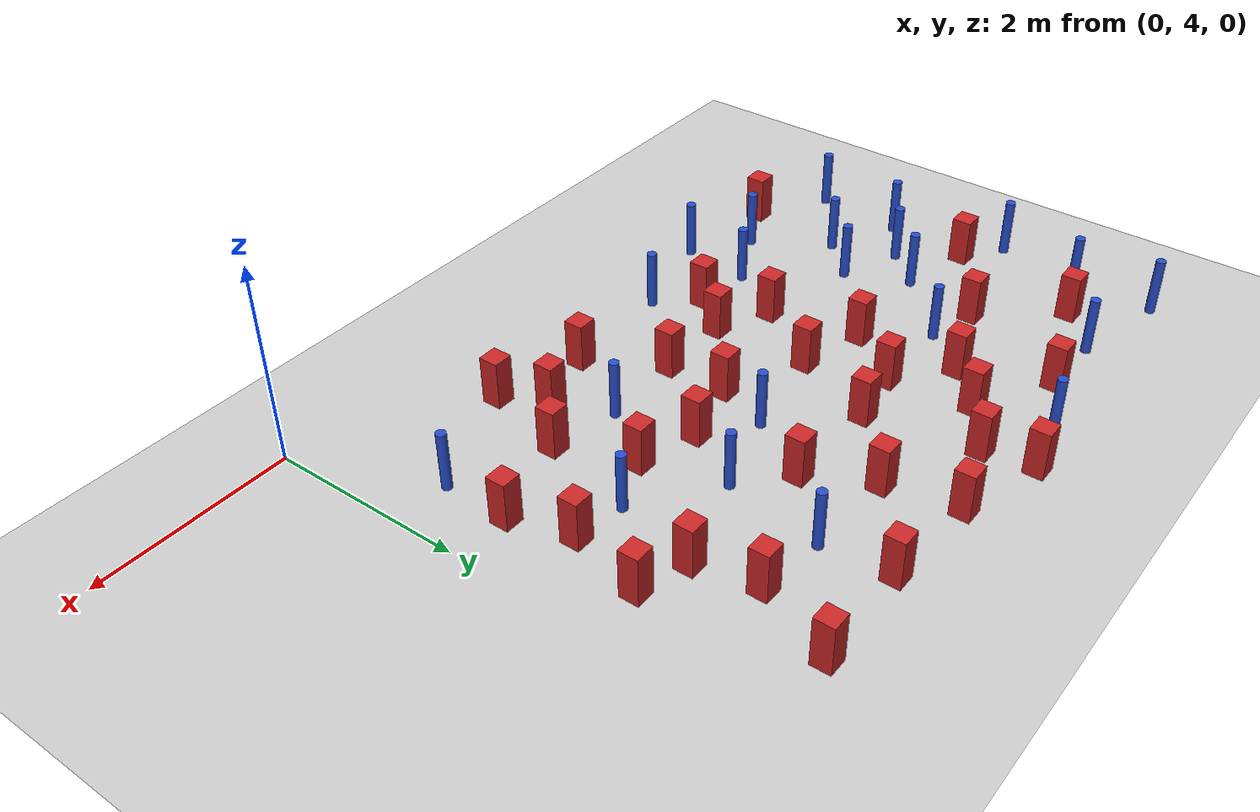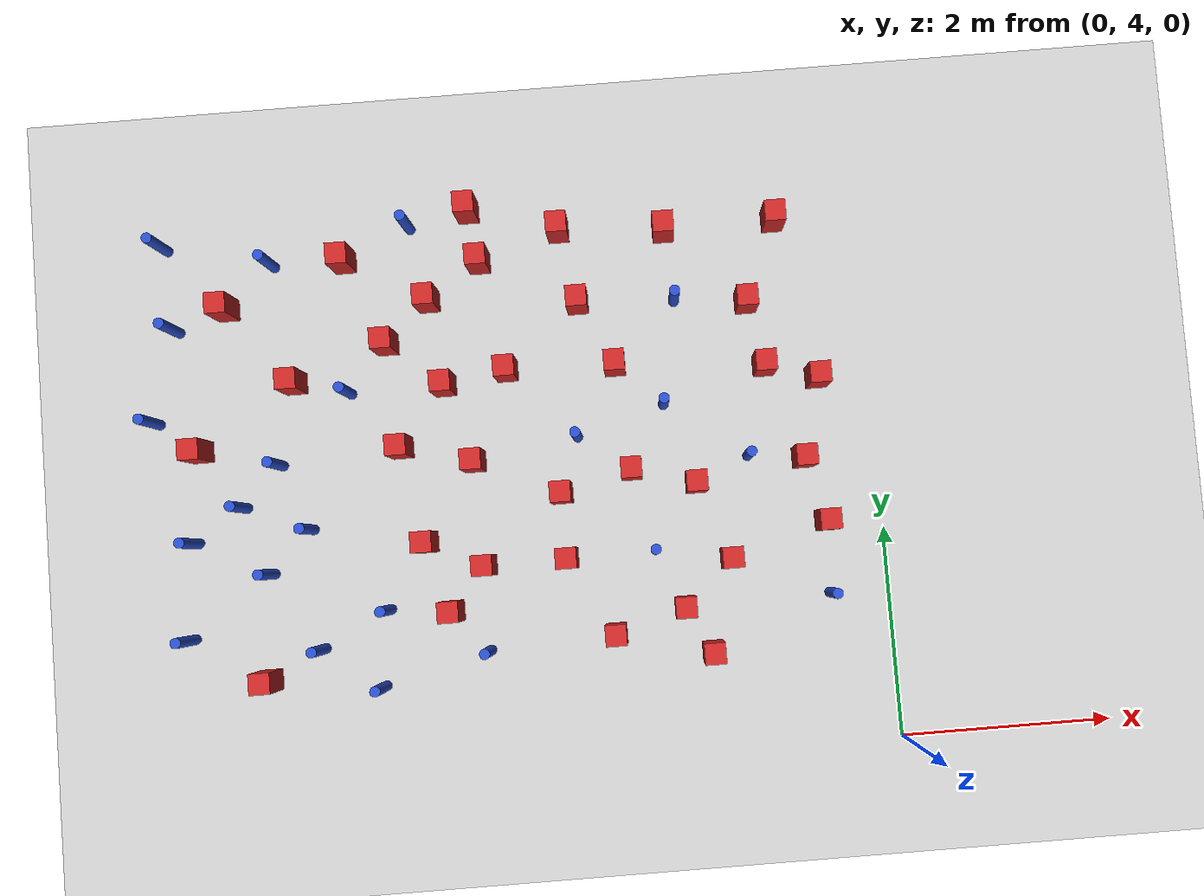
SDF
<sdf version="1.6">
 <world name="default">
  <model name="ground_plane">
   <static>1</static>
   <link name="link">
    <collision name="collision">
     <geometry><plane><normal>0 0 1</normal><size>100 100</size></plane></geometry>
     <surface><friction><ode><mu>100</mu><mu2>50</mu2></ode></friction></surface>
    </collision>
    <visual name="visual">
     <cast_shadows>0</cast_shadows>
     <geometry><plane><normal>0 0 1</normal><size>100 100</size></plane></geometry>
     <material>
      <ambient>1.0 1.0 1.0 1.0</ambient>
      <diffuse>0.8 0.8 0.8 1.0</diffuse>
      <specular>0.01 0.01 0.01 1.000000</specular>
     </material>
    </visual>
   </link>
  </model>
  <model name="square_post_obstacle1">
   <static>true</static>
   <pose>-6.19454957037 8.60646910702 8.22691968438e-08 7.22125133819e-06 -7.54495500217e-07 2.29674213826e-05</pose>
   <link name="link">
    <pose>0 0 0.25 0 -0 0</pose>
    <inertial>
     <mass>100</mass>
     <inertia>
      <ixx>0.166667</ixx>
      <ixy>0</ixy>
      <ixz>0</ixz>
      <iyy>0.166667</iyy>
      <iyz>0</iyz>
      <izz>0.166667</izz>
     </inertia>
    </inertial>
    <collision name="collision"><geometry><box><size>.2 .2 .5</size></box></geometry></collision>
    <visual name="visual">
     <geometry><box><size>.2 .2 .5</size></box></geometry>
     <material>
      <script><name>Gazebo/Red</name><uri>file://media/materials/scripts/gazebo.material</uri></script>
     </material>
    </visual>
   </link>
  </model>
  <model name="square_post_obstacle4">
   <static>true</static>
   <pose>-5.02430146812 8.98902265798 8.22691968438e-08 7.22125133819e-06 -7.54495500217e-07 2.29674213826e-05</pose>
   <link name="link">
    <pose>0 0 0.25 0 -0 0</pose>
    <inertial>
     <mass>100</mass>
     <inertia>
      <ixx>0.166667</ixx>
      <ixy>0</ixy>
      <ixz>0</ixz>
      <iyy>0.166667</iyy>
      <iyz>0</iyz>
      <izz>0.166667</izz>
     </inertia>
    </inertial>
    <collision name="collision"><geometry><box><size>.2 .2 .5</size></box></geometry></collision>
    <visual name="visual">
     <geometry><box><size>.2 .2 .5</size></box></geometry>
     <material>
      <script><name>Gazebo/Red</name><uri>file://media/materials/scripts/gazebo.material</uri></script>
     </material>
    </visual>
   </link>
  </model>
  <model name="square_post_obstacle8">
   <static>true</static>
   <pose>-4.58548154506 7.12806164214 8.22691968438e-08 7.2212513382e-06 -7.54495500217e-07 2.29674213826e-05</pose>
   <link name="link">
    <pose>0 0 0.25 0 -0 0</pose>
    <inertial>
     <mass>100</mass>
     <inertia>
      <ixx>0.166667</ixx>
      <ixy>0</ixy>
      <ixz>0</ixz>
      <iyy>0.166667</iyy>
      <iyz>0</iyz>
      <izz>0.166667</izz>
     </inertia>
    </inertial>
    <collision name="collision"><geometry><box><size>.2 .2 .5</size></box></geometry></collision>
    <visual name="visual">
     <geometry><box><size>.2 .2 .5</size></box></geometry>
     <material>
      <script><name>Gazebo/Red</name><uri>file://media/materials/scripts/gazebo.material</uri></script>
     </material>
    </visual>
   </link>
  </model>
  <model name="pole_obstacle6">
   <static>true</static>
   <pose>-5.90542350853 6.01039397077 2.88873142074e-08 -9.90536690842e-09 4.60219948965e-07 -1.20965994976e-07</pose>
   <link name="link">
    <pose>0 0 0.3 0 -0 0</pose>
    <inertial>
     <mass>1</mass>
     <inertia><ixx>0.145833</ixx><ixy>0</ixy><ixz>0</ixz><iyy>0.145833</iyy><iyz>0</iyz><izz>0.125</izz></inertia>
    </inertial>
    <collision name="collision">
     <geometry><cylinder><radius>0.05</radius><length>.6</length></cylinder></geometry>
    </collision>
    <visual name="visual">
     <geometry><cylinder><radius>0.05</radius><length>.6</length></cylinder></geometry>
     <material>
      <script><name>Gazebo/Blue</name><uri>file://media/materials/scripts/gazebo.material</uri></script>
     </material>
    </visual>
   </link>
  </model>
  <model name="pole_obstacle11">
   <static>true</static>
   <pose>-4.89623037934 4.85668667964 2.88873142074e-08 -9.90536690842e-09 4.60219948965e-07 -1.20965994976e-07</pose>
   <link name="link">
    <pose>0 0 0.3 0 -0 0</pose>
    <inertial>
     <mass>1</mass>
     <inertia><ixx>0.145833</ixx><ixy>0</ixy><ixz>0</ixz><iyy>0.145833</iyy><iyz>0</iyz><izz>0.125</izz></inertia>
    </inertial>
    <collision name="collision">
     <geometry><cylinder><radius>0.05</radius><length>.6</length></cylinder></geometry>
    </collision>
    <visual name="visual">
     <geometry><cylinder><radius>0.05</radius><length>.6</length></cylinder></geometry>
     <material>
      <script><name>Gazebo/Blue</name><uri>file://media/materials/scripts/gazebo.material</uri></script>
     </material>
    </visual>
   </link>
  </model>
  <model name="pole_obstacle13">
   <static>true</static>
   <pose>-1.8512218716 8.35684856804 2.88873142074e-08 -9.90536690474e-09 4.60219948974e-07 -1.2096599497e-07</pose>
   <link name="link">
    <pose>0 0 0.3 0 -0 0</pose>
    <inertial>
     <mass>1</mass>
     <inertia><ixx>0.145833</ixx><ixy>0</ixy><ixz>0</ixz><iyy>0.145833</iyy><iyz>0</iyz><izz>0.125</izz></inertia>
    </inertial>
    <collision name="collision">
     <geometry><cylinder><radius>0.05</radius><length>.6</length></cylinder></geometry>
    </collision>
    <visual name="visual">
     <geometry><cylinder><radius>0.05</radius><length>.6</length></cylinder></geometry>
     <material>
      <script><name>Gazebo/Blue</name><uri>file://media/materials/scripts/gazebo.material</uri></script>
     </material>
    </visual>
   </link>
  </model>
  <model name="square_post_obstacle25">
   <static>true</static>
   <pose>-3.89221258512 6.939853712 8.22691968438e-08 7.2212513382e-06 -7.54495500217e-07 2.29674213826e-05</pose>
   <link name="link">
    <pose>0 0 0.25 0 -0 0</pose>
    <inertial>
     <mass>100</mass>
     <inertia>
      <ixx>0.166667</ixx>
      <ixy>0</ixy>
      <ixz>0</ixz>
      <iyy>0.166667</iyy>
      <iyz>0</iyz>
      <izz>0.166667</izz>
     </inertia>
    </inertial>
    <collision name="collision"><geometry><box><size>.2 .2 .5</size></box></geometry></collision>
    <visual name="visual">
     <geometry><box><size>.2 .2 .5</size></box></geometry>
     <material>
      <script><name>Gazebo/Red</name><uri>file://media/materials/scripts/gazebo.material</uri></script>
     </material>
    </visual>
   </link>
  </model>
  <model name="square_post_obstacle30">
   <static>true</static>
   <pose>-5.57668496614 7.83497086581 8.22691968438e-08 7.2212513382e-06 -7.54495500217e-07 2.29674213826e-05</pose>
   <link name="link">
    <pose>0 0 0.25 0 -0 0</pose>
    <inertial>
     <mass>100</mass>
     <inertia>
      <ixx>0.166667</ixx>
      <ixy>0</ixy>
      <ixz>0</ixz>
      <iyy>0.166667</iyy>
      <iyz>0</iyz>
      <izz>0.166667</izz>
     </inertia>
    </inertial>
    <collision name="collision"><geometry><box><size>.2 .2 .5</size></box></geometry></collision>
    <visual name="visual">
     <geometry><box><size>.2 .2 .5</size></box></geometry>
     <material>
      <script><name>Gazebo/Red</name><uri>file://media/materials/scripts/gazebo.material</uri></script>
     </material>
    </visual>
   </link>
  </model>
  <model name="square_post_obstacle31">
   <static>true</static>
   <pose>-1.50098543269 5.82175164816 8.22691968438e-08 7.2212513382e-06 -7.54495500217e-07 2.29674213826e-05</pose>
   <link name="link">
    <pose>0 0 0.25 0 -0 0</pose>
    <inertial>
     <mass>100</mass>
     <inertia>
      <ixx>0.166667</ixx>
      <ixy>0</ixy>
      <ixz>0</ixz>
      <iyy>0.166667</iyy>
      <iyz>0</iyz>
      <izz>0.166667</izz>
     </inertia>
    </inertial>
    <collision name="collision"><geometry><box><size>.2 .2 .5</size></box></geometry></collision>
    <visual name="visual">
     <geometry><box><size>.2 .2 .5</size></box></geometry>
     <material>
      <script><name>Gazebo/Red</name><uri>file://media/materials/scripts/gazebo.material</uri></script>
     </material>
    </visual>
   </link>
  </model>
  <model name="pole_obstacle23">
   <static>true</static>
   <pose>-6.12920201815 6.66486570883 2.88873142074e-08 -9.90536690842e-09 4.60219948965e-07 -1.20965994976e-07</pose>
   <link name="link">
    <pose>0 0 0.3 0 -0 0</pose>
    <inertial>
     <mass>1</mass>
     <inertia><ixx>0.145833</ixx><ixy>0</ixy><ixz>0</ixz><iyy>0.145833</iyy><iyz>0</iyz><izz>0.125</izz></inertia>
    </inertial>
    <collision name="collision">
     <geometry><cylinder><radius>0.05</radius><length>.6</length></cylinder></geometry>
    </collision>
    <visual name="visual">
     <geometry><cylinder><radius>0.05</radius><length>.6</length></cylinder></geometry>
     <material>
      <script><name>Gazebo/Blue</name><uri>file://media/materials/scripts/gazebo.material</uri></script>
     </material>
    </visual>
   </link>
  </model>
  <model name="pole_obstacle33">
   <static>true</static>
   <pose>-5.75921656305 7.04978268385 2.88873142074e-08 -9.90536690842e-09 4.60219948965e-07 -1.20965994976e-07</pose>
   <link name="link">
    <pose>0 0 0.3 0 -0 0</pose>
    <inertial>
     <mass>1</mass>
     <inertia><ixx>0.145833</ixx><ixy>0</ixy><ixz>0</ixz><iyy>0.145833</iyy><iyz>0</iyz><izz>0.125</izz></inertia>
    </inertial>
    <collision name="collision">
     <geometry><cylinder><radius>0.05</radius><length>.6</length></cylinder></geometry>
    </collision>
    <visual name="visual">
     <geometry><cylinder><radius>0.05</radius><length>.6</length></cylinder></geometry>
     <material>
      <script><name>Gazebo/Blue</name><uri>file://media/materials/scripts/gazebo.material</uri></script>
     </material>
    </visual>
   </link>
  </model>
  <model name="square_post_obstacle38">
   <static>true</static>
   <pose>-1.03705518013 7.65376361876 8.22691968438e-08 7.2212513382e-06 -7.54495500217e-07 2.29674213826e-05</pose>
   <link name="link">
    <pose>0 0 0.25 0 -0 0</pose>
    <inertial>
     <mass>100</mass>
     <inertia>
      <ixx>0.166667</ixx>
      <ixy>0</ixy>
      <ixz>0</ixz>
      <iyy>0.166667</iyy>
      <iyz>0</iyz>
      <izz>0.166667</izz>
     </inertia>
    </inertial>
    <collision name="collision"><geometry><box><size>.2 .2 .5</size></box></geometry></collision>
    <visual name="visual">
     <geometry><box><size>.2 .2 .5</size></box></geometry>
     <material>
      <script><name>Gazebo/Red</name><uri>file://media/materials/scripts/gazebo.material</uri></script>
     </material>
    </visual>
   </link>
  </model>
  <model name="pole_obstacle42">
   <static>true</static>
   <pose>-2.03100301379 7.35323682517 2.88873142074e-08 -9.90536689575e-09 4.60219948995e-07 -1.20965994956e-07</pose>
   <link name="link">
    <pose>0 0 0.3 0 -0 0</pose>
    <inertial>
     <mass>1</mass>
     <inertia><ixx>0.145833</ixx><ixy>0</ixy><ixz>0</ixz><iyy>0.145833</iyy><iyz>0</iyz><izz>0.125</izz></inertia>
    </inertial>
    <collision name="collision">
     <geometry><cylinder><radius>0.05</radius><length>.6</length></cylinder></geometry>
    </collision>
    <visual name="visual">
     <geometry><cylinder><radius>0.05</radius><length>.6</length></cylinder></geometry>
     <material>
      <script><name>Gazebo/Blue</name><uri>file://media/materials/scripts/gazebo.material</uri></script>
     </material>
    </visual>
   </link>
  </model>
  <model name="square_post_obstacle40">
   <static>true</static>
   <pose>-1.161165072 8.28413120525 8.22691968438e-08 7.22125133819e-06 -7.54495500217e-07 2.29674213826e-05</pose>
   <link name="link">
    <pose>0 0 0.25 0 -0 0</pose>
    <inertial>
     <mass>100</mass>
     <inertia>
      <ixx>0.166667</ixx>
      <ixy>0</ixy>
      <ixz>0</ixz>
      <iyy>0.166667</iyy>
      <iyz>0</iyz>
      <izz>0.166667</izz>
     </inertia>
    </inertial>
    <collision name="collision"><geometry><box><size>.2 .2 .5</size></box></geometry></collision>
    <visual name="visual">
     <geometry><box><size>.2 .2 .5</size></box></geometry>
     <material>
      <script><name>Gazebo/Red</name><uri>file://media/materials/scripts/gazebo.material</uri></script>
     </material>
    </visual>
   </link>
  </model>
  <model name="square_post_obstacle43">
   <static>true</static>
   <pose>-2.4734806199 7.76851263054 8.22691968438e-08 7.2212513382e-06 -7.54495500217e-07 2.29674213826e-05</pose>
   <link name="link">
    <pose>0 0 0.25 0 -0 0</pose>
    <inertial>
     <mass>100</mass>
     <inertia>
      <ixx>0.166667</ixx>
      <ixy>0</ixy>
      <ixz>0</ixz>
      <iyy>0.166667</iyy>
      <iyz>0</iyz>
      <izz>0.166667</izz>
     </inertia>
    </inertial>
    <collision name="collision"><geometry><box><size>.2 .2 .5</size></box></geometry></collision>
    <visual name="visual">
     <geometry><box><size>.2 .2 .5</size></box></geometry>
     <material>
      <script><name>Gazebo/Red</name><uri>file://media/materials/scripts/gazebo.material</uri></script>
     </material>
    </visual>
   </link>
  </model>
  <model name="square_post_obstacle46">
   <static>true</static>
   <pose>-5.9843889005 5.00196543598 8.22691968438e-08 7.2212513382e-06 -7.54495500217e-07 2.29674213826e-05</pose>
   <link name="link">
    <pose>0 0 0.25 0 -0 0</pose>
    <inertial>
     <mass>100</mass>
     <inertia>
      <ixx>0.166667</ixx>
      <ixy>0</ixy>
      <ixz>0</ixz>
      <iyy>0.166667</iyy>
      <iyz>0</iyz>
      <izz>0.166667</izz>
     </inertia>
    </inertial>
    <collision name="collision"><geometry><box><size>.2 .2 .5</size></box></geometry></collision>
    <visual name="visual">
     <geometry><box><size>.2 .2 .5</size></box></geometry>
     <material>
      <script><name>Gazebo/Red</name><uri>file://media/materials/scripts/gazebo.material</uri></script>
     </material>
    </visual>
   </link>
  </model>
  <model name="square_post_obstacle50">
   <static>true</static>
   <pose>-3.79052157965 9.3899502203 8.22691968438e-08 7.2212513382e-06 -7.54495500217e-07 2.29674213826e-05</pose>
   <link name="link">
    <pose>0 0 0.25 0 -0 0</pose>
    <inertial>
     <mass>100</mass>
     <inertia>
      <ixx>0.166667</ixx>
      <ixy>0</ixy>
      <ixz>0</ixz>
      <iyy>0.166667</iyy>
      <iyz>0</iyz>
      <izz>0.166667</izz>
     </inertia>
    </inertial>
    <collision name="collision"><geometry><box><size>.2 .2 .5</size></box></geometry></collision>
    <visual name="visual">
     <geometry><box><size>.2 .2 .5</size></box></geometry>
     <material>
      <script><name>Gazebo/Red</name><uri>file://media/materials/scripts/gazebo.material</uri></script>
     </material>
    </visual>
   </link>
  </model>
  <model name="square_post_obstacle52">
   <static>true</static>
   <pose>-0.536095847095 7.49840972812 8.22691968438e-08 7.2212513382e-06 -7.54495500217e-07 2.29674213826e-05</pose>
   <link name="link">
    <pose>0 0 0.25 0 -0 0</pose>
    <inertial>
     <mass>100</mass>
     <inertia>
      <ixx>0.166667</ixx>
      <ixy>0</ixy>
      <ixz>0</ixz>
      <iyy>0.166667</iyy>
      <iyz>0</iyz>
      <izz>0.166667</izz>
     </inertia>
    </inertial>
    <collision name="collision"><geometry><box><size>.2 .2 .5</size></box></geometry></collision>
    <visual name="visual">
     <geometry><box><size>.2 .2 .5</size></box></geometry>
     <material>
      <script><name>Gazebo/Red</name><uri>file://media/materials/scripts/gazebo.material</uri></script>
     </material>
    </visual>
   </link>
  </model>
  <model name="square_post_obstacle55">
   <static>true</static>
   <pose>-6.52557372354 7.23843825717 8.22691968438e-08 7.2212513382e-06 -7.54495500217e-07 2.29674213826e-05</pose>
   <link name="link">
    <pose>0 0 0.25 0 -0 0</pose>
    <inertial>
     <mass>100</mass>
     <inertia>
      <ixx>0.166667</ixx>
      <ixy>0</ixy>
      <ixz>0</ixz>
      <iyy>0.166667</iyy>
      <iyz>0</iyz>
      <izz>0.166667</izz>
     </inertia>
    </inertial>
    <collision name="collision"><geometry><box><size>.2 .2 .5</size></box></geometry></collision>
    <visual name="visual">
     <geometry><box><size>.2 .2 .5</size></box></geometry>
     <material>
      <script><name>Gazebo/Red</name><uri>file://media/materials/scripts/gazebo.material</uri></script>
     </material>
    </visual>
   </link>
  </model>
  <model name="square_post_obstacle56">
   <static>true</static>
   <pose>-2.65211153001 5.18501252416 8.22691968438e-08 7.2212513382e-06 -7.54495500217e-07 2.29674213826e-05</pose>
   <link name="link">
    <pose>0 0 0.25 0 -0 0</pose>
    <inertial>
     <mass>100</mass>
     <inertia>
      <ixx>0.166667</ixx>
      <ixy>0</ixy>
      <ixz>0</ixz>
      <iyy>0.166667</iyy>
      <iyz>0</iyz>
      <izz>0.166667</izz>
     </inertia>
    </inertial>
    <collision name="collision"><geometry><box><size>.2 .2 .5</size></box></geometry></collision>
    <visual name="visual">
     <geometry><box><size>.2 .2 .5</size></box></geometry>
     <material>
      <script><name>Gazebo/Red</name><uri>file://media/materials/scripts/gazebo.material</uri></script>
     </material>
    </visual>
   </link>
  </model>
  <model name="square_post_obstacle60">
   <static>true</static>
   <pose>-2.78641717957 8.40544036517 8.22691968438e-08 7.22125133819e-06 -7.54495500217e-07 2.29674213826e-05</pose>
   <link name="link">
    <pose>0 0 0.25 0 -0 0</pose>
    <inertial>
     <mass>100</mass>
     <inertia>
      <ixx>0.166667</ixx>
      <ixy>0</ixy>
      <ixz>0</ixz>
      <iyy>0.166667</iyy>
      <iyz>0</iyz>
      <izz>0.166667</izz>
     </inertia>
    </inertial>
    <collision name="collision"><geometry><box><size>.2 .2 .5</size></box></geometry></collision>
    <visual name="visual">
     <geometry><box><size>.2 .2 .5</size></box></geometry>
     <material>
      <script><name>Gazebo/Red</name><uri>file://media/materials/scripts/gazebo.material</uri></script>
     </material>
    </visual>
   </link>
  </model>
  <model name="pole_obstacle61">
   <static>true</static>
   <pose>-1.25591498489 6.79208332623 2.88873142074e-08 -9.90536689852e-09 4.60219948989e-07 -1.2096599496e-07</pose>
   <link name="link">
    <pose>0 0 0.3 0 -0 0</pose>
    <inertial>
     <mass>1</mass>
     <inertia><ixx>0.145833</ixx><ixy>0</ixy><ixz>0</ixz><iyy>0.145833</iyy><iyz>0</iyz><izz>0.125</izz></inertia>
    </inertial>
    <collision name="collision">
     <geometry><cylinder><radius>0.05</radius><length>.6</length></cylinder></geometry>
    </collision>
    <visual name="visual">
     <geometry><cylinder><radius>0.05</radius><length>.6</length></cylinder></geometry>
     <material>
      <script><name>Gazebo/Blue</name><uri>file://media/materials/scripts/gazebo.material</uri></script>
     </material>
    </visual>
   </link>
  </model>
  <model name="square_post_obstacle66">
   <static>true</static>
   <pose>-3.51907014644 7.79689552462 8.22691968438e-08 7.2212513382e-06 -7.54495500217e-07 2.29674213826e-05</pose>
   <link name="link">
    <pose>0 0 0.25 0 -0 0</pose>
    <inertial>
     <mass>100</mass>
     <inertia>
      <ixx>0.166667</ixx>
      <ixy>0</ixy>
      <ixz>0</ixz>
      <iyy>0.166667</iyy>
      <iyz>0</iyz>
      <izz>0.166667</izz>
     </inertia>
    </inertial>
    <collision name="collision"><geometry><box><size>.2 .2 .5</size></box></geometry></collision>
    <visual name="visual">
     <geometry><box><size>.2 .2 .5</size></box></geometry>
     <material>
      <script><name>Gazebo/Red</name><uri>file://media/materials/scripts/gazebo.material</uri></script>
     </material>
    </visual>
   </link>
  </model>
  <model name="square_post_obstacle69">
   <static>true</static>
   <pose>-2.38888775343 6.74268260401 8.22691968438e-08 7.2212513382e-06 -7.54495500217e-07 2.29674213826e-05</pose>
   <link name="link">
    <pose>0 0 0.25 0 -0 0</pose>
    <inertial>
     <mass>100</mass>
     <inertia>
      <ixx>0.166667</ixx>
      <ixy>0</ixy>
      <ixz>0</ixz>
      <iyy>0.166667</iyy>
      <iyz>0</iyz>
      <izz>0.166667</izz>
     </inertia>
    </inertial>
    <collision name="collision"><geometry><box><size>.2 .2 .5</size></box></geometry></collision>
    <visual name="visual">
     <geometry><box><size>.2 .2 .5</size></box></geometry>
     <material>
      <script><name>Gazebo/Red</name><uri>file://media/materials/scripts/gazebo.material</uri></script>
     </material>
    </visual>
   </link>
  </model>
  <model name="pole_obstacle80">
   <static>true</static>
   <pose>-4.80314598368 5.58180737375 2.88873142074e-08 -9.90536690842e-09 4.60219948965e-07 -1.20965994976e-07</pose>
   <link name="link">
    <pose>0 0 0.3 0 -0 0</pose>
    <inertial>
     <mass>1</mass>
     <inertia><ixx>0.145833</ixx><ixy>0</ixy><ixz>0</ixz><iyy>0.145833</iyy><iyz>0</iyz><izz>0.125</izz></inertia>
    </inertial>
    <collision name="collision">
     <geometry><cylinder><radius>0.05</radius><length>.6</length></cylinder></geometry>
    </collision>
    <visual name="visual">
     <geometry><cylinder><radius>0.05</radius><length>.6</length></cylinder></geometry>
     <material>
      <script><name>Gazebo/Blue</name><uri>file://media/materials/scripts/gazebo.material</uri></script>
     </material>
    </visual>
   </link>
  </model>
  <model name="pole_obstacle89">
   <static>true</static>
   <pose>-6.70010752616 5.44217685319 2.88873142074e-08 -9.90536690842e-09 4.60219948965e-07 -1.20965994976e-07</pose>
   <link name="link">
    <pose>0 0 0.3 0 -0 0</pose>
    <inertial>
     <mass>1</mass>
     <inertia><ixx>0.145833</ixx><ixy>0</ixy><ixz>0</ixz><iyy>0.145833</iyy><iyz>0</iyz><izz>0.125</izz></inertia>
    </inertial>
    <collision name="collision">
     <geometry><cylinder><radius>0.05</radius><length>.6</length></cylinder></geometry>
    </collision>
    <visual name="visual">
     <geometry><cylinder><radius>0.05</radius><length>.6</length></cylinder></geometry>
     <material>
      <script><name>Gazebo/Blue</name><uri>file://media/materials/scripts/gazebo.material</uri></script>
     </material>
    </visual>
   </link>
  </model>
  <model name="pole_obstacle92">
   <static>true</static>
   <pose>-0.574267201386 5.4144962759 2.88873142074e-08 -9.90536689661e-09 4.60219948993e-07 -1.20965994957e-07</pose>
   <link name="link">
    <pose>0 0 0.3 0 -0 0</pose>
    <inertial>
     <mass>1</mass>
     <inertia><ixx>0.145833</ixx><ixy>0</ixy><ixz>0</ixz><iyy>0.145833</iyy><iyz>0</iyz><izz>0.125</izz></inertia>
    </inertial>
    <collision name="collision">
     <geometry><cylinder><radius>0.05</radius><length>.6</length></cylinder></geometry>
    </collision>
    <visual name="visual">
     <geometry><cylinder><radius>0.05</radius><length>.6</length></cylinder></geometry>
     <material>
      <script><name>Gazebo/Blue</name><uri>file://media/materials/scripts/gazebo.material</uri></script>
     </material>
    </visual>
   </link>
  </model>
  <model name="pole_obstacle99">
   <static>true</static>
   <pose>-6.76146524251 9.24512615431 2.88873142074e-08 -9.9053668967e-09 4.60219948993e-07 -1.20965994957e-07</pose>
   <link name="link">
    <pose>0 0 0.3 0 -0 0</pose>
    <inertial>
     <mass>1</mass>
     <inertia><ixx>0.145833</ixx><ixy>0</ixy><ixz>0</ixz><iyy>0.145833</iyy><iyz>0</iyz><izz>0.125</izz></inertia>
    </inertial>
    <collision name="collision">
     <geometry><cylinder><radius>0.05</radius><length>.6</length></cylinder></geometry>
    </collision>
    <visual name="visual">
     <geometry><cylinder><radius>0.05</radius><length>.6</length></cylinder></geometry>
     <material>
      <script><name>Gazebo/Blue</name><uri>file://media/materials/scripts/gazebo.material</uri></script>
     </material>
    </visual>
   </link>
  </model>
  <model name="pole_obstacle101">
   <static>true</static>
   <pose>-2.21617872916 5.95353163429 2.88873142074e-08 -9.90536689859e-09 4.60219948989e-07 -1.20965994961e-07</pose>
   <link name="link">
    <pose>0 0 0.3 0 -0 0</pose>
    <inertial>
     <mass>1</mass>
     <inertia><ixx>0.145833</ixx><ixy>0</ixy><ixz>0</ixz><iyy>0.145833</iyy><iyz>0</iyz><izz>0.125</izz></inertia>
    </inertial>
    <collision name="collision">
     <geometry><cylinder><radius>0.05</radius><length>.6</length></cylinder></geometry>
    </collision>
    <visual name="visual">
     <geometry><cylinder><radius>0.05</radius><length>.6</length></cylinder></geometry>
     <material>
      <script><name>Gazebo/Blue</name><uri>file://media/materials/scripts/gazebo.material</uri></script>
     </material>
    </visual>
   </link>
  </model>
  <model name="pole_obstacle106">
   <static>true</static>
   <pose>-3.86764114867 5.11735773839 2.88873142074e-08 -9.90536689859e-09 4.60219948989e-07 -1.20965994961e-07</pose>
   <link name="link">
    <pose>0 0 0.3 0 -0 0</pose>
    <inertial>
     <mass>1</mass>
     <inertia><ixx>0.145833</ixx><ixy>0</ixy><ixz>0</ixz><iyy>0.145833</iyy><iyz>0</iyz><izz>0.125</izz></inertia>
    </inertial>
    <collision name="collision">
     <geometry><cylinder><radius>0.05</radius><length>.6</length></cylinder></geometry>
    </collision>
    <visual name="visual">
     <geometry><cylinder><radius>0.05</radius><length>.6</length></cylinder></geometry>
     <material>
      <script><name>Gazebo/Blue</name><uri>file://media/materials/scripts/gazebo.material</uri></script>
     </material>
    </visual>
   </link>
  </model>
  <model name="square_post_obstacle95">
   <static>true</static>
   <pose>-1.78046258571 6.56895954649 8.22691968438e-08 7.2212513382e-06 -7.54495500217e-07 2.29674213826e-05</pose>
   <link name="link">
    <pose>0 0 0.25 0 -0 0</pose>
    <inertial>
     <mass>100</mass>
     <inertia>
      <ixx>0.166667</ixx>
      <ixy>0</ixy>
      <ixz>0</ixz>
      <iyy>0.166667</iyy>
      <iyz>0</iyz>
      <izz>0.166667</izz>
     </inertia>
    </inertial>
    <collision name="collision"><geometry><box><size>.2 .2 .5</size></box></geometry></collision>
    <visual name="visual">
     <geometry><box><size>.2 .2 .5</size></box></geometry>
     <material>
      <script><name>Gazebo/Red</name><uri>file://media/materials/scripts/gazebo.material</uri></script>
     </material>
    </visual>
   </link>
  </model>
  <model name="square_post_obstacle98">
   <static>true</static>
   <pose>-3.71372434792 8.8801099394 8.22691968438e-08 7.22125133819e-06 -7.54495500217e-07 2.29674213826e-05</pose>
   <link name="link">
    <pose>0 0 0.25 0 -0 0</pose>
    <inertial>
     <mass>100</mass>
     <inertia>
      <ixx>0.166667</ixx>
      <ixy>0</ixy>
      <ixz>0</ixz>
      <iyy>0.166667</iyy>
      <iyz>0</iyz>
      <izz>0.166667</izz>
     </inertia>
    </inertial>
    <collision name="collision"><geometry><box><size>.2 .2 .5</size></box></geometry></collision>
    <visual name="visual">
     <geometry><box><size>.2 .2 .5</size></box></geometry>
     <material>
      <script><name>Gazebo/Red</name><uri>file://media/materials/scripts/gazebo.material</uri></script>
     </material>
    </visual>
   </link>
  </model>
  <model name="pole_obstacle118">
   <static>true</static>
   <pose>-5.50046420276 6.40820069776 2.88873142074e-08 -9.90536690842e-09 4.60219948965e-07 -1.20965994976e-07</pose>
   <link name="link">
    <pose>0 0 0.3 0 -0 0</pose>
    <inertial>
     <mass>1</mass>
     <inertia><ixx>0.145833</ixx><ixy>0</ixy><ixz>0</ixz><iyy>0.145833</iyy><iyz>0</iyz><izz>0.125</izz></inertia>
    </inertial>
    <collision name="collision">
     <geometry><cylinder><radius>0.05</radius><length>.6</length></cylinder></geometry>
    </collision>
    <visual name="visual">
     <geometry><cylinder><radius>0.05</radius><length>.6</length></cylinder></geometry>
     <material>
      <script><name>Gazebo/Blue</name><uri>file://media/materials/scripts/gazebo.material</uri></script>
     </material>
    </visual>
   </link>
  </model>
  <model name="square_post_obstacle105">
   <static>true</static>
   <pose>-4.23303382099 8.53788707821 8.22691968438e-08 7.22125133819e-06 -7.54495500217e-07 2.29674213826e-05</pose>
   <link name="link">
    <pose>0 0 0.25 0 -0 0</pose>
    <inertial>
     <mass>100</mass>
     <inertia>
      <ixx>0.166667</ixx>
      <ixy>0</ixy>
      <ixz>0</ixz>
      <iyy>0.166667</iyy>
      <iyz>0</iyz>
      <izz>0.166667</izz>
     </inertia>
    </inertial>
    <collision name="collision"><geometry><box><size>.2 .2 .5</size></box></geometry></collision>
    <visual name="visual">
     <geometry><box><size>.2 .2 .5</size></box></geometry>
     <material>
      <script><name>Gazebo/Red</name><uri>file://media/materials/scripts/gazebo.material</uri></script>
     </material>
    </visual>
   </link>
  </model>
  <model name="square_post_obstacle111">
   <static>true</static>
   <pose>-3.07348803943 6.56723555006 8.22691968438e-08 7.2212513382e-06 -7.54495500217e-07 2.29674213826e-05</pose>
   <link name="link">
    <pose>0 0 0.25 0 -0 0</pose>
    <inertial>
     <mass>100</mass>
     <inertia>
      <ixx>0.166667</ixx>
      <ixy>0</ixy>
      <ixz>0</ixz>
      <iyy>0.166667</iyy>
      <iyz>0</iyz>
      <izz>0.166667</izz>
     </inertia>
    </inertial>
    <collision name="collision"><geometry><box><size>.2 .2 .5</size></box></geometry></collision>
    <visual name="visual">
     <geometry><box><size>.2 .2 .5</size></box></geometry>
     <material>
      <script><name>Gazebo/Red</name><uri>file://media/materials/scripts/gazebo.material</uri></script>
     </material>
    </visual>
   </link>
  </model>
  <model name="square_post_obstacle112">
   <static>true</static>
   <pose>-3.85568165913 5.93320951343 8.22691968438e-08 7.2212513382e-06 -7.54495500217e-07 2.29674213826e-05</pose>
   <link name="link">
    <pose>0 0 0.25 0 -0 0</pose>
    <inertial>
     <mass>100</mass>
     <inertia>
      <ixx>0.166667</ixx>
      <ixy>0</ixy>
      <ixz>0</ixz>
      <iyy>0.166667</iyy>
      <iyz>0</iyz>
      <izz>0.166667</izz>
     </inertia>
    </inertial>
    <collision name="collision"><geometry><box><size>.2 .2 .5</size></box></geometry></collision>
    <visual name="visual">
     <geometry><box><size>.2 .2 .5</size></box></geometry>
     <material>
      <script><name>Gazebo/Red</name><uri>file://media/materials/scripts/gazebo.material</uri></script>
     </material>
    </visual>
   </link>
  </model>
  <model name="pole_obstacle121">
   <static>true</static>
   <pose>-5.72607473307 9.00305282529 2.88873142074e-08 -9.9053668967e-09 4.60219948993e-07 -1.20965994957e-07</pose>
   <link name="link">
    <pose>0 0 0.3 0 -0 0</pose>
    <inertial>
     <mass>1</mass>
     <inertia><ixx>0.145833</ixx><ixy>0</ixy><ixz>0</ixz><iyy>0.145833</iyy><iyz>0</iyz><izz>0.125</izz></inertia>
    </inertial>
    <collision name="collision">
     <geometry><cylinder><radius>0.05</radius><length>.6</length></cylinder></geometry>
    </collision>
    <visual name="visual">
     <geometry><cylinder><radius>0.05</radius><length>.6</length></cylinder></geometry>
     <material>
      <script><name>Gazebo/Blue</name><uri>file://media/materials/scripts/gazebo.material</uri></script>
     </material>
    </visual>
   </link>
  </model>
  <model name="square_post_obstacle122">
   <static>true</static>
   <pose>-3.06623074407 5.93835127152 8.22691968438e-08 7.2212513382e-06 -7.54495500217e-07 2.29674213826e-05</pose>
   <link name="link">
    <pose>0 0 0.25 0 -0 0</pose>
    <inertial>
     <mass>100</mass>
     <inertia>
      <ixx>0.166667</ixx>
      <ixy>0</ixy>
      <ixz>0</ixz>
      <iyy>0.166667</iyy>
      <iyz>0</iyz>
      <izz>0.166667</izz>
     </inertia>
    </inertial>
    <collision name="collision"><geometry><box><size>.2 .2 .5</size></box></geometry></collision>
    <visual name="visual">
     <geometry><box><size>.2 .2 .5</size></box></geometry>
     <material>
      <script><name>Gazebo/Red</name><uri>file://media/materials/scripts/gazebo.material</uri></script>
     </material>
    </visual>
   </link>
  </model>
  <model name="square_post_obstacle133">
   <static>true</static>
   <pose>-0.729881105976 6.73193626073 8.22691968438e-08 7.2212513382e-06 -7.54495500217e-07 2.29674213826e-05</pose>
   <link name="link">
    <pose>0 0 0.25 0 -0 0</pose>
    <inertial>
     <mass>100</mass>
     <inertia>
      <ixx>0.166667</ixx>
      <ixy>0</ixy>
      <ixz>0</ixz>
      <iyy>0.166667</iyy>
      <iyz>0</iyz>
      <izz>0.166667</izz>
     </inertia>
    </inertial>
    <collision name="collision"><geometry><box><size>.2 .2 .5</size></box></geometry></collision>
    <visual name="visual">
     <geometry><box><size>.2 .2 .5</size></box></geometry>
     <material>
      <script><name>Gazebo/Red</name><uri>file://media/materials/scripts/gazebo.material</uri></script>
     </material>
    </visual>
   </link>
  </model>
  <model name="pole_obstacle145">
   <static>true</static>
   <pose>-6.69131265252 8.42896483324 2.88873142074e-08 -9.9053668967e-09 4.60219948993e-07 -1.20965994957e-07</pose>
   <link name="link">
    <pose>0 0 0.3 0 -0 0</pose>
    <inertial>
     <mass>1</mass>
     <inertia><ixx>0.145833</ixx><ixy>0</ixy><ixz>0</ixz><iyy>0.145833</iyy><iyz>0</iyz><izz>0.125</izz></inertia>
    </inertial>
    <collision name="collision">
     <geometry><cylinder><radius>0.05</radius><length>.6</length></cylinder></geometry>
    </collision>
    <visual name="visual">
     <geometry><cylinder><radius>0.05</radius><length>.6</length></cylinder></geometry>
     <material>
      <script><name>Gazebo/Blue</name><uri>file://media/materials/scripts/gazebo.material</uri></script>
     </material>
    </visual>
   </link>
  </model>
  <model name="pole_obstacle152">
   <static>true</static>
   <pose>-5.45779634075 5.25793391766 2.88873142074e-08 -9.90536690842e-09 4.60219948965e-07 -1.20965994976e-07</pose>
   <link name="link">
    <pose>0 0 0.3 0 -0 0</pose>
    <inertial>
     <mass>1</mass>
     <inertia><ixx>0.145833</ixx><ixy>0</ixy><ixz>0</ixz><iyy>0.145833</iyy><iyz>0</iyz><izz>0.125</izz></inertia>
    </inertial>
    <collision name="collision">
     <geometry><cylinder><radius>0.05</radius><length>.6</length></cylinder></geometry>
    </collision>
    <visual name="visual">
     <geometry><cylinder><radius>0.05</radius><length>.6</length></cylinder></geometry>
     <material>
      <script><name>Gazebo/Blue</name><uri>file://media/materials/scripts/gazebo.material</uri></script>
     </material>
    </visual>
   </link>
  </model>
  <model name="pole_obstacle155">
   <static>true</static>
   <pose>-5.05117704768 7.6958138629 2.88873142074e-08 -9.90536690842e-09 4.60219948965e-07 -1.20965994976e-07</pose>
   <link name="link">
    <pose>0 0 0.3 0 -0 0</pose>
    <inertial>
     <mass>1</mass>
     <inertia><ixx>0.145833</ixx><ixy>0</ixy><ixz>0</ixz><iyy>0.145833</iyy><iyz>0</iyz><izz>0.125</izz></inertia>
    </inertial>
    <collision name="collision">
     <geometry><cylinder><radius>0.05</radius><length>.6</length></cylinder></geometry>
    </collision>
    <visual name="visual">
     <geometry><cylinder><radius>0.05</radius><length>.6</length></cylinder></geometry>
     <material>
      <script><name>Gazebo/Blue</name><uri>file://media/materials/scripts/gazebo.material</uri></script>
     </material>
    </visual>
   </link>
  </model>
  <model name="square_post_obstacle148">
   <static>true</static>
   <pose>-1.90673679277 9.04928354506 8.22691968438e-08 7.22125133819e-06 -7.54495500217e-07 2.29674213826e-05</pose>
   <link name="link">
    <pose>0 0 0.25 0 -0 0</pose>
    <inertial>
     <mass>100</mass>
     <inertia>
      <ixx>0.166667</ixx>
      <ixy>0</ixy>
      <ixz>0</ixz>
      <iyy>0.166667</iyy>
      <iyz>0</iyz>
      <izz>0.166667</izz>
     </inertia>
    </inertial>
    <collision name="collision"><geometry><box><size>.2 .2 .5</size></box></geometry></collision>
    <visual name="visual">
     <geometry><box><size>.2 .2 .5</size></box></geometry>
     <material>
      <script><name>Gazebo/Red</name><uri>file://media/materials/scripts/gazebo.material</uri></script>
     </material>
    </visual>
   </link>
  </model>
  <model name="pole_obstacle158">
   <static>true</static>
   <pose>-2.88499671377 7.10187918833 2.88873142074e-08 -9.90536689859e-09 4.60219948989e-07 -1.20965994961e-07</pose>
   <link name="link">
    <pose>0 0 0.3 0 -0 0</pose>
    <inertial>
     <mass>1</mass>
     <inertia><ixx>0.145833</ixx><ixy>0</ixy><ixz>0</ixz><iyy>0.145833</iyy><iyz>0</iyz><izz>0.125</izz></inertia>
    </inertial>
    <collision name="collision">
     <geometry><cylinder><radius>0.05</radius><length>.6</length></cylinder></geometry>
    </collision>
    <visual name="visual">
     <geometry><cylinder><radius>0.05</radius><length>.6</length></cylinder></geometry>
     <material>
      <script><name>Gazebo/Blue</name><uri>file://media/materials/scripts/gazebo.material</uri></script>
     </material>
    </visual>
   </link>
  </model>
  <model name="pole_obstacle176">
   <static>true</static>
   <pose>-6.93073858831 7.54372331702 2.88873142074e-08 -9.90536690842e-09 4.60219948965e-07 -1.20965994976e-07</pose>
   <link name="link">
    <pose>0 0 0.3 0 -0 0</pose>
    <inertial>
     <mass>1</mass>
     <inertia><ixx>0.145833</ixx><ixy>0</ixy><ixz>0</ixz><iyy>0.145833</iyy><iyz>0</iyz><izz>0.125</izz></inertia>
    </inertial>
    <collision name="collision">
     <geometry><cylinder><radius>0.05</radius><length>.6</length></cylinder></geometry>
    </collision>
    <visual name="visual">
     <geometry><cylinder><radius>0.05</radius><length>.6</length></cylinder></geometry>
     <material>
      <script><name>Gazebo/Blue</name><uri>file://media/materials/scripts/gazebo.material</uri></script>
     </material>
    </visual>
   </link>
  </model>
  <model name="pole_obstacle178">
   <static>true</static>
   <pose>-6.61528767679 6.36102631154 2.88873142074e-08 -9.90536690842e-09 4.60219948965e-07 -1.20965994976e-07</pose>
   <link name="link">
    <pose>0 0 0.3 0 -0 0</pose>
    <inertial>
     <mass>1</mass>
     <inertia><ixx>0.145833</ixx><ixy>0</ixy><ixz>0</ixz><iyy>0.145833</iyy><iyz>0</iyz><izz>0.125</izz></inertia>
    </inertial>
    <collision name="collision">
     <geometry><cylinder><radius>0.05</radius><length>.6</length></cylinder></geometry>
    </collision>
    <visual name="visual">
     <geometry><cylinder><radius>0.05</radius><length>.6</length></cylinder></geometry>
     <material>
      <script><name>Gazebo/Blue</name><uri>file://media/materials/scripts/gazebo.material</uri></script>
     </material>
    </visual>
   </link>
  </model>
  <model name="square_post_obstacle170">
   <static>true</static>
   <pose>-0.834840021628 9.06990017174 8.22691968438e-08 7.22125133819e-06 -7.54495500217e-07 2.29674213826e-05</pose>
   <link name="link">
    <pose>0 0 0.25 0 -0 0</pose>
    <inertial>
     <mass>100</mass>
     <inertia>
      <ixx>0.166667</ixx>
      <ixy>0</ixy>
      <ixz>0</ixz>
      <iyy>0.166667</iyy>
      <iyz>0</iyz>
      <izz>0.166667</izz>
     </inertia>
    </inertial>
    <collision name="collision"><geometry><box><size>.2 .2 .5</size></box></geometry></collision>
    <visual name="visual">
     <geometry><box><size>.2 .2 .5</size></box></geometry>
     <material>
      <script><name>Gazebo/Red</name><uri>file://media/materials/scripts/gazebo.material</uri></script>
     </material>
    </visual>
   </link>
  </model>
  <model name="square_post_obstacle183">
   <static>true</static>
   <pose>-2.92400459648 9.12820877088 8.22691968438e-08 7.22125133819e-06 -7.54495500217e-07 2.29674213826e-05</pose>
   <link name="link">
    <pose>0 0 0.25 0 -0 0</pose>
    <inertial>
     <mass>100</mass>
     <inertia>
      <ixx>0.166667</ixx>
      <ixy>0</ixy>
      <ixz>0</ixz>
      <iyy>0.166667</iyy>
      <iyz>0</iyz>
      <izz>0.166667</izz>
     </inertia>
    </inertial>
    <collision name="collision"><geometry><box><size>.2 .2 .5</size></box></geometry></collision>
    <visual name="visual">
     <geometry><box><size>.2 .2 .5</size></box></geometry>
     <material>
      <script><name>Gazebo/Red</name><uri>file://media/materials/scripts/gazebo.material</uri></script>
     </material>
    </visual>
   </link>
  </model>
  <model name="square_post_obstacle197">
   <static>true</static>
   <pose>-4.66238570363 8.14948958451 8.22691968438e-08 7.22125133819e-06 -7.54495500217e-07 2.29674213826e-05</pose>
   <link name="link">
    <pose>0 0 0.25 0 -0 0</pose>
    <inertial>
     <mass>100</mass>
     <inertia>
      <ixx>0.166667</ixx>
      <ixy>0</ixy>
      <ixz>0</ixz>
      <iyy>0.166667</iyy>
      <iyz>0</iyz>
      <izz>0.166667</izz>
     </inertia>
    </inertial>
    <collision name="collision"><geometry><box><size>.2 .2 .5</size></box></geometry></collision>
    <visual name="visual">
     <geometry><box><size>.2 .2 .5</size></box></geometry>
     <material>
      <script><name>Gazebo/Red</name><uri>file://media/materials/scripts/gazebo.material</uri></script>
     </material>
    </visual>
   </link>
  </model>
  <model name="square_post_obstacle200">
   <static>true</static>
   <pose>-4.1989297644 5.52300288711 8.22691968438e-08 7.2212513382e-06 -7.54495500217e-07 2.29674213826e-05</pose>
   <link name="link">
    <pose>0 0 0.25 0 -0 0</pose>
    <inertial>
     <mass>100</mass>
     <inertia>
      <ixx>0.166667</ixx>
      <ixy>0</ixy>
      <ixz>0</ixz>
      <iyy>0.166667</iyy>
      <iyz>0</iyz>
      <izz>0.166667</izz>
     </inertia>
    </inertial>
    <collision name="collision"><geometry><box><size>.2 .2 .5</size></box></geometry></collision>
    <visual name="visual">
     <geometry><box><size>.2 .2 .5</size></box></geometry>
     <material>
      <script><name>Gazebo/Red</name><uri>file://media/materials/scripts/gazebo.material</uri></script>
     </material>
    </visual>
   </link>
  </model>
  <model name="pole_obstacle189">
   <static>true</static>
   <pose>-4.3751010618 9.27372502255 2.88873142074e-08 -9.9053668967e-09 4.60219948993e-07 -1.20965994957e-07</pose>
   <link name="link">
    <pose>0 0 0.3 0 -0 0</pose>
    <inertial>
     <mass>1</mass>
     <inertia><ixx>0.145833</ixx><ixy>0</ixy><ixz>0</ixz><iyy>0.145833</iyy><iyz>0</iyz><izz>0.125</izz></inertia>
    </inertial>
    <collision name="collision">
     <geometry><cylinder><radius>0.05</radius><length>.6</length></cylinder></geometry>
    </collision>
    <visual name="visual">
     <geometry><cylinder><radius>0.05</radius><length>.6</length></cylinder></geometry>
     <material>
      <script><name>Gazebo/Blue</name><uri>file://media/materials/scripts/gazebo.material</uri></script>
     </material>
    </visual>
   </link>
  </model>
  <model name="square_post_obstacle217">
   <static>true</static>
   <pose>-4.40526525366 6.19828502572 8.22691968438e-08 7.2212513382e-06 -7.54495500217e-07 2.29674213826e-05</pose>
   <link name="link">
    <pose>0 0 0.25 0 -0 0</pose>
    <inertial>
     <mass>100</mass>
     <inertia>
      <ixx>0.166667</ixx>
      <ixy>0</ixy>
      <ixz>0</ixz>
      <iyy>0.166667</iyy>
      <iyz>0</iyz>
      <izz>0.166667</izz>
     </inertia>
    </inertial>
    <collision name="collision"><geometry><box><size>.2 .2 .5</size></box></geometry></collision>
    <visual name="visual">
     <geometry><box><size>.2 .2 .5</size></box></geometry>
     <material>
      <script><name>Gazebo/Red</name><uri>file://media/materials/scripts/gazebo.material</uri></script>
     </material>
    </visual>
   </link>
  </model>
  <model name="square_post_obstacle219">
   <static>true</static>
   <pose>-4.12894159382 7.701408822 8.22691968438e-08 7.2212513382e-06 -7.54495500217e-07 2.29674213826e-05</pose>
   <link name="link">
    <pose>0 0 0.25 0 -0 0</pose>
    <inertial>
     <mass>100</mass>
     <inertia>
      <ixx>0.166667</ixx>
      <ixy>0</ixy>
      <ixz>0</ixz>
      <iyy>0.166667</iyy>
      <iyz>0</iyz>
      <izz>0.166667</izz>
     </inertia>
    </inertial>
    <collision name="collision"><geometry><box><size>.2 .2 .5</size></box></geometry></collision>
    <visual name="visual">
     <geometry><box><size>.2 .2 .5</size></box></geometry>
     <material>
      <script><name>Gazebo/Red</name><uri>file://media/materials/scripts/gazebo.material</uri></script>
     </material>
    </visual>
   </link>
  </model>
  <model name="square_post_obstacle231">
   <static>true</static>
   <pose>-0.560308967378 6.10985996466 8.22691968438e-08 7.2212513382e-06 -7.54495500217e-07 2.29674213826e-05</pose>
   <link name="link">
    <pose>0 0 0.25 0 -0 0</pose>
    <inertial>
     <mass>100</mass>
     <inertia>
      <ixx>0.166667</ixx>
      <ixy>0</ixy>
      <ixz>0</ixz>
      <iyy>0.166667</iyy>
      <iyz>0</iyz>
      <izz>0.166667</izz>
     </inertia>
    </inertial>
    <collision name="collision"><geometry><box><size>.2 .2 .5</size></box></geometry></collision>
    <visual name="visual">
     <geometry><box><size>.2 .2 .5</size></box></geometry>
     <material>
      <script><name>Gazebo/Red</name><uri>file://media/materials/scripts/gazebo.material</uri></script>
     </material>
    </visual>
   </link>
  </model>
  <model name="square_post_obstacle235">
   <static>true</static>
   <pose>-1.74338996738 4.94491996466 8.22691968438e-08 7.2212513382e-06 -7.54495500217e-07 2.29674213826e-05</pose>
   <link name="link">
    <pose>0 0 0.25 0 -0 0</pose>
    <inertial>
     <mass>100</mass>
     <inertia>
      <ixx>0.166667</ixx>
      <ixy>0</ixy>
      <ixz>0</ixz>
      <iyy>0.166667</iyy>
      <iyz>0</iyz>
      <izz>0.166667</izz>
     </inertia>
    </inertial>
    <collision name="collision"><geometry><box><size>.2 .2 .5</size></box></geometry></collision>
    <visual name="visual">
     <geometry><box><size>.2 .2 .5</size></box></geometry>
     <material>
      <script><name>Gazebo/Red</name><uri>file://media/materials/scripts/gazebo.material</uri></script>
     </material>
    </visual>
   </link>
  </model>
  <model name="square_post_obstacle237">
   <static>true</static>
   <pose>-1.97602996738 5.38995996466 8.22691968438e-08 7.2212513382e-06 -7.54495500217e-07 2.29674213826e-05</pose>
   <link name="link">
    <pose>0 0 0.25 0 -0 0</pose>
    <inertial>
     <mass>100</mass>
     <inertia>
      <ixx>0.166667</ixx>
      <ixy>0</ixy>
      <ixz>0</ixz>
      <iyy>0.166667</iyy>
      <iyz>0</iyz>
      <izz>0.166667</izz>
     </inertia>
    </inertial>
    <collision name="collision"><geometry><box><size>.2 .2 .5</size></box></geometry></collision>
    <visual name="visual">
     <geometry><box><size>.2 .2 .5</size></box></geometry>
     <material>
      <script><name>Gazebo/Red</name><uri>file://media/materials/scripts/gazebo.material</uri></script>
     </material>
    </visual>
   </link>
  </model>
 </world>
</sdf>
